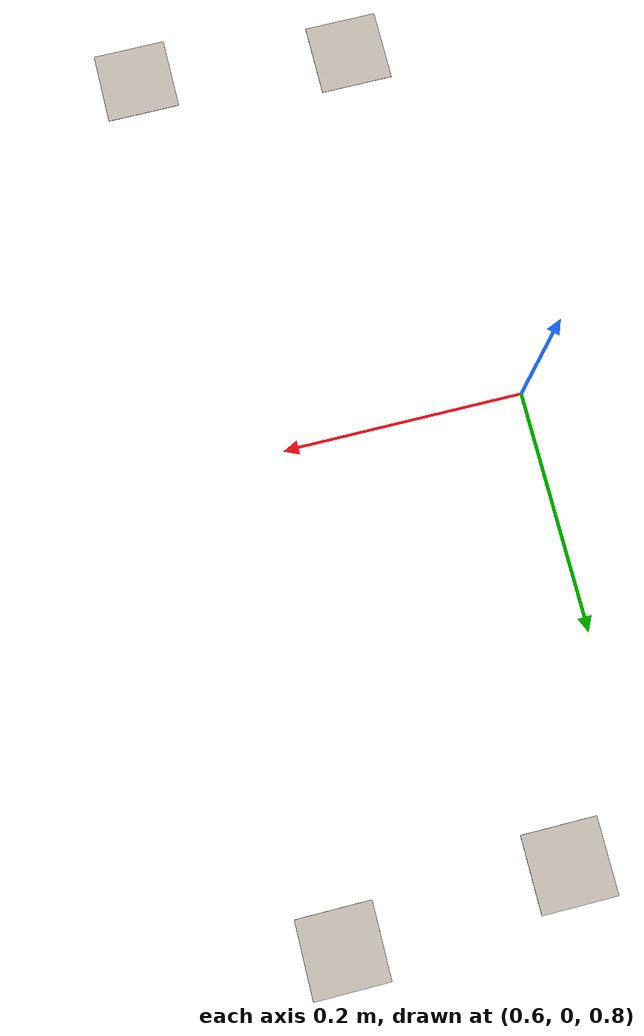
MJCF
<mujoco model="perception_reference">
  <compiler angle="radian" texturedir="tags" />
  <asset>
    <texture name="ref_tag_90_tex" type="2d" file="tag_90.png" />
    <material name="ref_tag_90_mat" texture="ref_tag_90_tex" rgba="1 1 1 1" specular="0" shininess="0" reflectance="0" emission="0" />
    <mesh name="ref_tag_90_mesh" vertex="-0.0333333 0.0333333 0 0.0333333 0.0333333 0 0.0333333 -0.0333333 0 -0.0333333 -0.0333333 0 -0.0333333 0.0333333 -0.0005 0.0333333 0.0333333 -0.0005 0.0333333 -0.0333333 -0.0005 -0.0333333 -0.0333333 -0.0005" texcoord="0 0 1 0 1 1 0 1 0 0 1 0 1 1 0 1" face="0 2 1 0 3 2 7 5 6 7 4 5 0 5 4 0 1 5 1 6 5 1 2 6 2 7 6 2 3 7 3 4 7 3 0 4" />
    <texture name="ref_tag_91_tex" type="2d" file="tag_91.png" />
    <material name="ref_tag_91_mat" texture="ref_tag_91_tex" rgba="1 1 1 1" specular="0" shininess="0" reflectance="0" emission="0" />
    <mesh name="ref_tag_91_mesh" vertex="-0.0333333 0.0333333 0 0.0333333 0.0333333 0 0.0333333 -0.0333333 0 -0.0333333 -0.0333333 0 -0.0333333 0.0333333 -0.0005 0.0333333 0.0333333 -0.0005 0.0333333 -0.0333333 -0.0005 -0.0333333 -0.0333333 -0.0005" texcoord="0 0 1 0 1 1 0 1 0 0 1 0 1 1 0 1" face="0 2 1 0 3 2 7 5 6 7 4 5 0 5 4 0 1 5 1 6 5 1 2 6 2 7 6 2 3 7 3 4 7 3 0 4" />
    <texture name="ref_tag_92_tex" type="2d" file="tag_92.png" />
    <material name="ref_tag_92_mat" texture="ref_tag_92_tex" rgba="1 1 1 1" specular="0" shininess="0" reflectance="0" emission="0" />
    <mesh name="ref_tag_92_mesh" vertex="-0.0333333 0.0333333 0 0.0333333 0.0333333 0 0.0333333 -0.0333333 0 -0.0333333 -0.0333333 0 -0.0333333 0.0333333 -0.0005 0.0333333 0.0333333 -0.0005 0.0333333 -0.0333333 -0.0005 -0.0333333 -0.0333333 -0.0005" texcoord="0 0 1 0 1 1 0 1 0 0 1 0 1 1 0 1" face="0 2 1 0 3 2 7 5 6 7 4 5 0 5 4 0 1 5 1 6 5 1 2 6 2 7 6 2 3 7 3 4 7 3 0 4" />
    <texture name="ref_tag_93_tex" type="2d" file="tag_93.png" />
    <material name="ref_tag_93_mat" texture="ref_tag_93_tex" rgba="1 1 1 1" specular="0" shininess="0" reflectance="0" emission="0" />
    <mesh name="ref_tag_93_mesh" vertex="-0.0333333 0.0333333 0 0.0333333 0.0333333 0 0.0333333 -0.0333333 0 -0.0333333 -0.0333333 0 -0.0333333 0.0333333 -0.0005 0.0333333 0.0333333 -0.0005 0.0333333 -0.0333333 -0.0005 -0.0333333 -0.0333333 -0.0005" texcoord="0 0 1 0 1 1 0 1 0 0 1 0 1 1 0 1" face="0 2 1 0 3 2 7 5 6 7 4 5 0 5 4 0 1 5 1 6 5 1 2 6 2 7 6 2 3 7 3 4 7 3 0 4" />
  </asset>
  <worldbody>
    <body name="perception_reference" pos="0 0 0">
      <inertial pos="0 0 0" mass="0.001" diaginertia="1e-6 1e-6 1e-6" />
      <geom name="ref_tag_90" type="mesh" mesh="ref_tag_90_mesh" material="ref_tag_90_mat" pos="0.65 -0.38 0.7022" quat="0.707107 0 0 -0.707107" contype="0" conaffinity="0" group="2" density="0" />
      <geom name="ref_tag_91" type="mesh" mesh="ref_tag_91_mesh" material="ref_tag_91_mat" pos="0.65 0.38 0.7022" quat="0.707107 0 0 -0.707107" contype="0" conaffinity="0" group="2" density="0" />
      <geom name="ref_tag_92" type="mesh" mesh="ref_tag_92_mesh" material="ref_tag_92_mat" pos="0.85 -0.4 0.7022" quat="0.707107 0 0 -0.707107" contype="0" conaffinity="0" group="2" density="0" />
      <geom name="ref_tag_93" type="mesh" mesh="ref_tag_93_mesh" material="ref_tag_93_mat" pos="0.85 0.4 0.7022" quat="0.707107 0 0 -0.707107" contype="0" conaffinity="0" group="2" density="0" />
    </body>
  </worldbody>
</mujoco>
